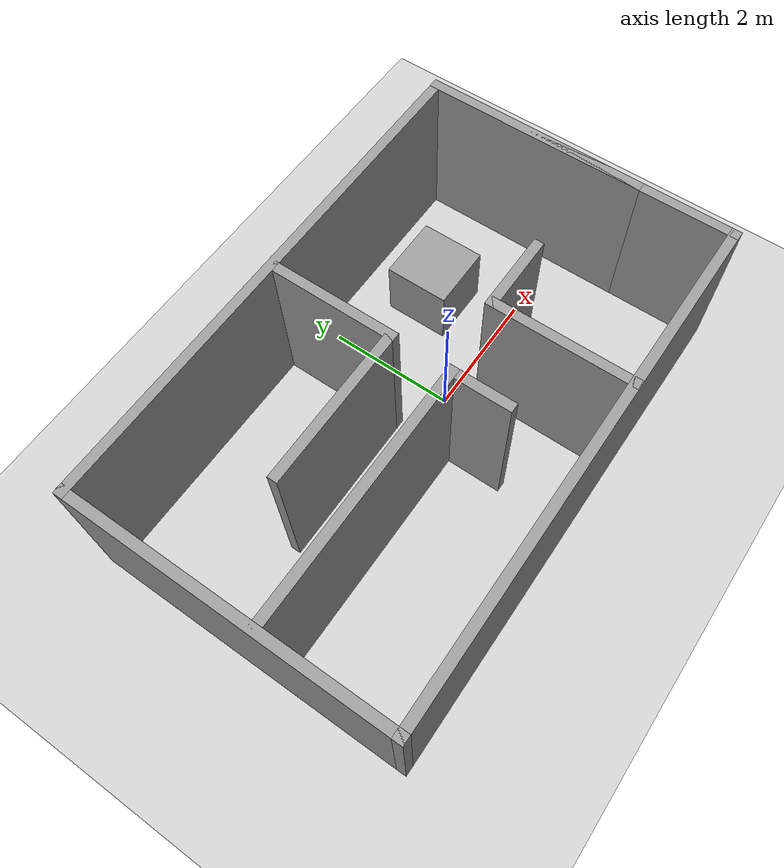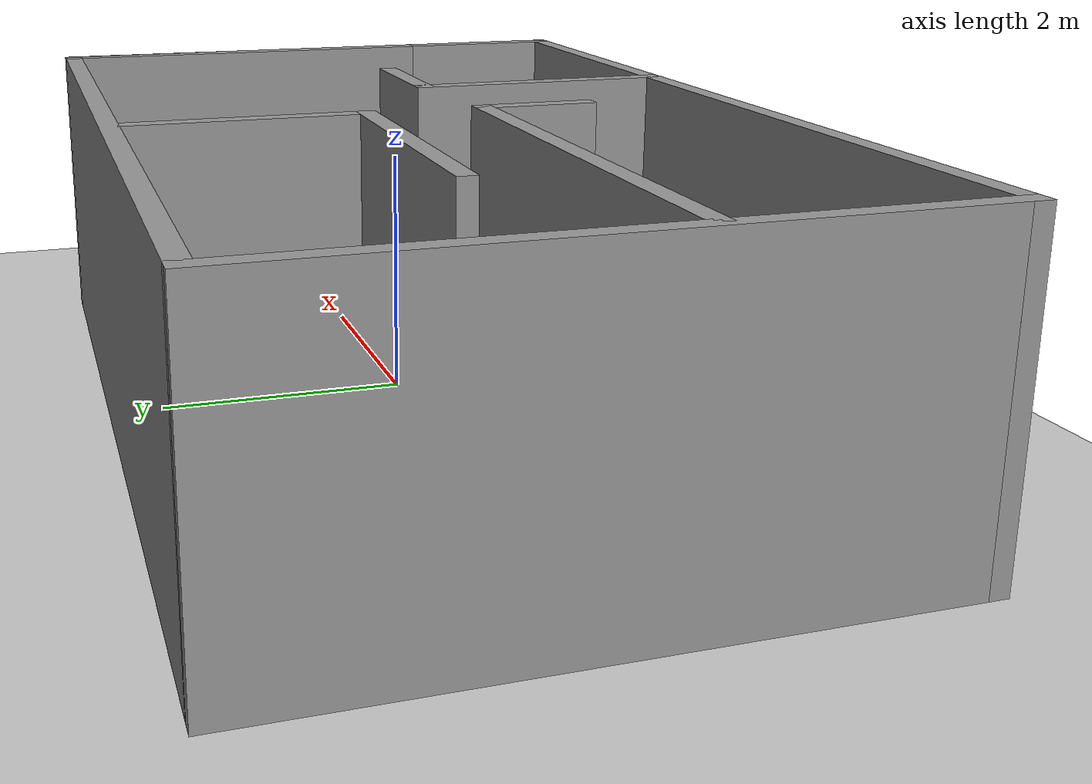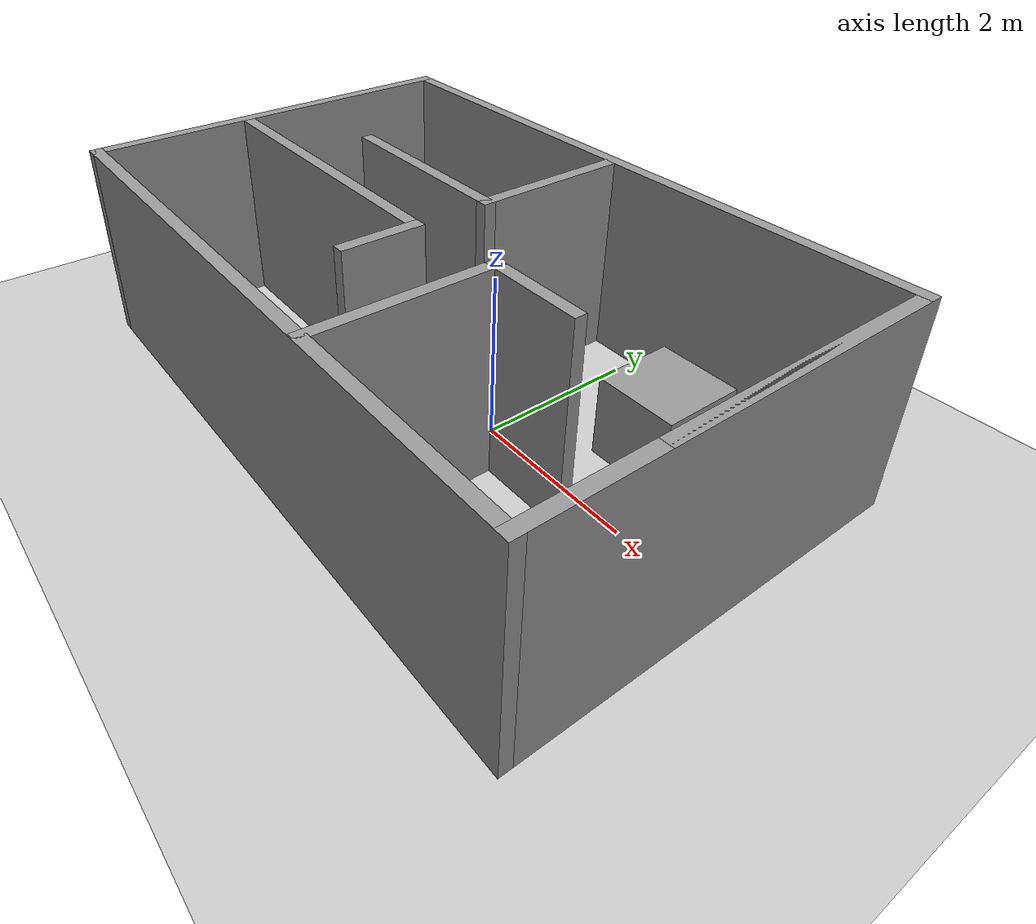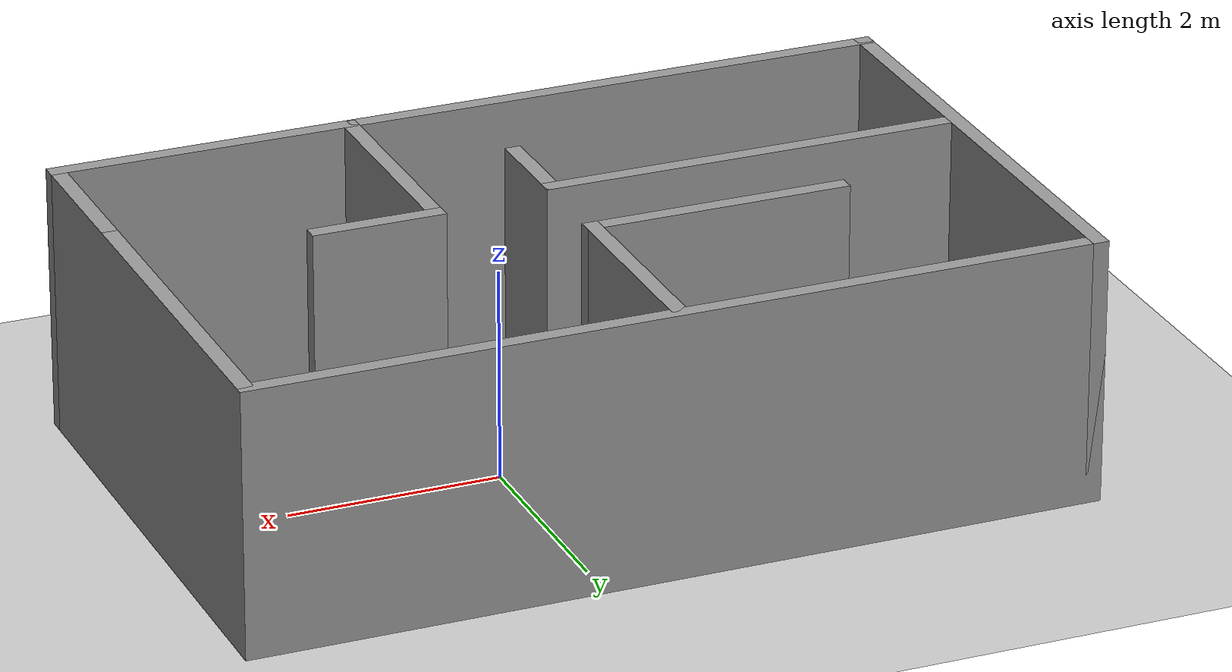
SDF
<sdf version="1.7">
 <world name="default">
  <model name="HnuRobot">
   <plugin name="my_robot_plugin" filename="libd_drive_car.so"><wheelSeparation>0.2</wheelSeparation></plugin>
   <link name="base_footprint">
    <inertial>
     <pose>0 0 0.084091 0 -0 0</pose>
     <mass>1.1</mass>
     <inertia>
      <ixx>0.00423533</ixx>
      <ixy>0</ixy>
      <ixz>0</ixz>
      <iyy>0.00487533</iyy>
      <iyz>0</iyz>
      <izz>0.00565024</izz>
     </inertia>
    </inertial>
    <collision name="base_footprint_fixed_joint_lump__base_link_collision">
     <pose>0 0 0.091 0 -0 0</pose>
     <geometry><cylinder><length>0.12</length><radius>0.1</radius></cylinder></geometry>
    </collision>
    <collision name="base_footprint_fixed_joint_lump__back_caster_link_collision_1">
     <pose>-0.08 0 0.015 0 -0 0</pose>
     <geometry><sphere><radius>0.016</radius></sphere></geometry>
     <surface>
      <contact><ode><kp>1e+09</kp><kd>1</kd></ode></contact>
      <friction><ode><mu>0</mu><mu2>0</mu2></ode></friction>
     </surface>
    </collision>
    <collision name="base_footprint_fixed_joint_lump__front_caster_link_collision_2">
     <pose>0.08 0 0.015 0 -0 0</pose>
     <geometry><sphere><radius>0.016</radius></sphere></geometry>
     <surface>
      <contact><ode><kp>1e+09</kp><kd>1</kd></ode></contact>
      <friction><ode><mu>0</mu><mu2>0</mu2></ode></friction>
     </surface>
    </collision>
    <visual name="base_footprint_fixed_joint_lump__base_link_visual">
     <pose>0 0 0.091 0 -0 0</pose>
     <geometry><cylinder><length>0.12</length><radius>0.1</radius></cylinder></geometry>
    </visual>
    <visual name="base_footprint_fixed_joint_lump__back_caster_link_visual_1">
     <pose>-0.08 0 0.015 0 -0 0</pose>
     <geometry><sphere><radius>0.016</radius></sphere></geometry>
    </visual>
    <visual name="base_footprint_fixed_joint_lump__front_caster_link_visual_2">
     <pose>0.08 0 0.015 0 -0 0</pose>
     <geometry><sphere><radius>0.016</radius></sphere></geometry>
    </visual>
   </link>
   <joint name="left_wheel_joint" type="revolute">
    <pose relative_to="base_footprint">0 0.1 0.031 0 -0 0</pose>
    <parent>base_footprint</parent>
    <child>left_wheel_link</child>
    <axis>
     <xyz>0 1 0</xyz>
     <limit><lower>-1e+16</lower><upper>1e+16</upper></limit>
     <dynamics><spring_reference>0</spring_reference><spring_stiffness>0</spring_stiffness></dynamics>
    </axis>
   </joint>
   <link name="left_wheel_link">
    <pose relative_to="left_wheel_joint">0 0 0 0 -0 0</pose>
    <inertial>
     <mass>0.05</mass>
     <inertia>
      <ixx>1.94667e-05</ixx>
      <ixy>0</ixy>
      <ixz>0</ixz>
      <iyy>1.94667e-05</iyy>
      <iyz>0</iyz>
      <izz>2.56e-05</izz>
     </inertia>
    </inertial>
    <collision name="left_wheel_link_collision">
     <pose>0 0 0 1.57079 -0 0</pose>
     <geometry><cylinder><length>0.04</length><radius>0.032</radius></cylinder></geometry>
     <surface>
      <contact><ode><kp>1e+09</kp><kd>1</kd></ode></contact>
      <friction><ode><mu>20</mu><mu2>20</mu2></ode></friction>
     </surface>
    </collision>
    <visual name="left_wheel_link_visual">
     <pose>0 0 0 1.57079 -0 0</pose>
     <geometry><cylinder><length>0.04</length><radius>0.032</radius></cylinder></geometry>
    </visual>
   </link>
   <joint name="right_wheel_joint" type="revolute">
    <pose relative_to="base_footprint">0 -0.1 0.031 0 -0 0</pose>
    <parent>base_footprint</parent>
    <child>right_wheel_link</child>
    <axis>
     <xyz>0 1 0</xyz>
     <limit><lower>-1e+16</lower><upper>1e+16</upper></limit>
     <dynamics><spring_reference>0</spring_reference><spring_stiffness>0</spring_stiffness></dynamics>
    </axis>
   </joint>
   <link name="right_wheel_link">
    <pose relative_to="right_wheel_joint">0 0 0 0 -0 0</pose>
    <inertial>
     <mass>0.05</mass>
     <inertia>
      <ixx>1.94667e-05</ixx>
      <ixy>0</ixy>
      <ixz>0</ixz>
      <iyy>1.94667e-05</iyy>
      <iyz>0</iyz>
      <izz>2.56e-05</izz>
     </inertia>
    </inertial>
    <collision name="right_wheel_link_collision">
     <pose>0 0 0 1.57079 -0 0</pose>
     <geometry><cylinder><length>0.04</length><radius>0.032</radius></cylinder></geometry>
     <surface>
      <contact><ode><kp>1e+09</kp><kd>1</kd></ode></contact>
      <friction><ode><mu>20</mu><mu2>20</mu2></ode></friction>
     </surface>
    </collision>
    <visual name="right_wheel_link_visual">
     <pose>0 0 0 1.57079 -0 0</pose>
     <geometry><cylinder><length>0.04</length><radius>0.032</radius></cylinder></geometry>
    </visual>
   </link>
   <plugin name="pose_publisher_plugin" filename="libpose_publisher.so"/>
   <plugin name="odom_publisher_plugin" filename="libodom_publisher_plugin.so"/>
  </model>
  <light name="sun" type="directional">
   <pose>0 0 10 0 -0 0</pose>
   <diffuse>0.8 0.8 0.8 1</diffuse>
   <specular>0.2 0.2 0.2 1</specular>
   <attenuation>
    <range>1000</range>
    <constant>0.9</constant>
    <linear>0.01</linear>
    <quadratic>0.001</quadratic>
   </attenuation>
   <direction>-0.5 0.1 -0.9</direction>
   <spot><inner_angle>0</inner_angle><outer_angle>0</outer_angle><falloff>0</falloff></spot>
  </light>
  <model name="ground_plane">
   <static>1</static>
   <link name="link">
    <collision name="collision">
     <geometry><plane><normal>0 0 1</normal><size>100 100</size></plane></geometry>
     <surface><friction><ode><mu>100</mu><mu2>50</mu2></ode></friction></surface>
    </collision>
    <visual name="visual">
     <cast_shadows>0</cast_shadows>
     <geometry><plane><normal>0 0 1</normal><size>100 100</size></plane></geometry>
     <material>
      <script><uri>file://media/materials/scripts/gazebo.material</uri><name>Gazebo/Grey</name></script>
     </material>
    </visual>
   </link>
  </model>
  <gravity>0 0 -9.8</gravity>
  <magnetic_field>6e-06 2.3e-05 -4.2e-05</magnetic_field>
  <atmosphere type="adiabatic"/>
  <physics type="ode">
   <max_step_size>0.001</max_step_size>
   <real_time_factor>1</real_time_factor>
   <real_time_update_rate>1000</real_time_update_rate>
  </physics>
  <scene><ambient>0.4 0.4 0.4 1</ambient><background>0.7 0.7 0.7 1</background><shadows>1</shadows></scene>
  <audio><device>default</device></audio>
  <spherical_coordinates>
   <surface_model>EARTH_WGS84</surface_model>
   <latitude_deg>0</latitude_deg>
   <longitude_deg>0</longitude_deg>
   <elevation>0</elevation>
   <heading_deg>0</heading_deg>
  </spherical_coordinates>
  <model name="room.world">
   <pose>-0.709576 0.326645 0 0 -0 0</pose>
   <link name="Wall_0">
    <collision name="Wall_0_Collision">
     <geometry><box><size>8 0.15 2.5</size></box></geometry>
     <pose>0 0 1.25 0 -0 0</pose>
    </collision>
    <visual name="Wall_0_Visual">
     <pose>0 0 1.25 0 -0 0</pose>
     <geometry><box><size>8 0.15 2.5</size></box></geometry>
     <material>
      <script><uri>file://media/materials/scripts/gazebo.material</uri><name>Gazebo/Grey</name></script>
      <ambient>1 1 1 1</ambient>
     </material>
     <meta><layer>0</layer></meta>
    </visual>
    <pose>0 2.0325 0 0 -0 0</pose>
   </link>
   <link name="Wall_1">
    <collision name="Wall_1_Collision">
     <geometry><box><size>3.5 0.15 2.5</size></box></geometry>
     <pose>0 0 1.25 0 -0 0</pose>
    </collision>
    <visual name="Wall_1_Visual">
     <pose>0 0 1.25 0 -0 0</pose>
     <geometry><box><size>3.5 0.15 2.5</size></box></geometry>
     <material>
      <script><uri>file://media/materials/scripts/gazebo.material</uri><name>Gazebo/Grey</name></script>
      <ambient>1 1 1 1</ambient>
     </material>
     <meta><layer>0</layer></meta>
    </visual>
    <pose>3.925 0.3575 0 0 -0 -1.5708</pose>
   </link>
   <link name="Wall_14">
    <collision name="Wall_14_Collision">
     <geometry><box><size>2 0.15 2.5</size></box></geometry>
     <pose>0 0 1.25 0 -0 0</pose>
    </collision>
    <visual name="Wall_14_Visual">
     <pose>0 0 1.25 0 -0 0</pose>
     <geometry><box><size>2 0.15 2.5</size></box></geometry>
     <material>
      <script><uri>file://media/materials/scripts/gazebo.material</uri><name>Gazebo/Grey</name></script>
      <ambient>1 1 1 1</ambient>
     </material>
     <meta><layer>0</layer></meta>
    </visual>
    <pose>-0.001041 1.01648 0 0 -0 -1.5708</pose>
   </link>
   <link name="Wall_15">
    <collision name="Wall_15_Collision">
     <geometry><box><size>2.5 0.15 2.5</size></box></geometry>
     <pose>0 0 1.25 0 -0 0</pose>
    </collision>
    <visual name="Wall_15_Visual">
     <pose>0 0 1.25 0 -0 0</pose>
     <geometry><box><size>2.5 0.15 2.5</size></box></geometry>
     <material>
      <script><uri>file://media/materials/scripts/gazebo.material</uri><name>Gazebo/Grey</name></script>
      <ambient>1 1 1 1</ambient>
     </material>
     <meta><layer>0</layer></meta>
    </visual>
    <pose>-1.17604 0.091484 0 0 -0 3.14159</pose>
   </link>
   <link name="Wall_17">
    <collision name="Wall_17_Collision">
     <geometry><box><size>4 0.15 2.5</size></box></geometry>
     <pose>0 0 1.25 0 -0 0</pose>
    </collision>
    <visual name="Wall_17_Visual">
     <pose>0 0 1.25 0 -0 0</pose>
     <geometry><box><size>4 0.15 2.5</size></box></geometry>
     <material>
      <script><uri>file://media/materials/scripts/gazebo.material</uri><name>Gazebo/Grey</name></script>
      <ambient>1 1 1 1</ambient>
     </material>
     <meta><layer>0</layer></meta>
    </visual>
    <pose>-1.92386 -0.841717 0 0 -0 0</pose>
   </link>
   <link name="Wall_18">
    <collision name="Wall_18_Collision">
     <geometry><box><size>1 0.15 2.5</size></box></geometry>
     <pose>0 0 1.25 0 -0 0</pose>
    </collision>
    <visual name="Wall_18_Visual">
     <pose>0 0 1.25 0 -0 0</pose>
     <geometry><box><size>1 0.15 2.5</size></box></geometry>
     <material>
      <script><uri>file://media/materials/scripts/gazebo.material</uri><name>Gazebo/Grey</name></script>
      <ambient>1 1 1 1</ambient>
     </material>
     <meta><layer>0</layer></meta>
    </visual>
    <pose>0.001145 -1.26672 0 0 -0 -1.5708</pose>
   </link>
   <link name="Wall_20">
    <collision name="Wall_20_Collision">
     <geometry><box><size>2.25 0.15 2.5</size></box></geometry>
     <pose>0 0 1.25 0 -0 0</pose>
    </collision>
    <visual name="Wall_20_Visual">
     <pose>0 0 1.25 0 -0 0</pose>
     <geometry><box><size>2.25 0.15 2.5</size></box></geometry>
     <material>
      <script><uri>file://media/materials/scripts/gazebo.material</uri><name>Gazebo/Grey</name></script>
      <ambient>1 1 1 1</ambient>
     </material>
     <meta><layer>0</layer></meta>
    </visual>
    <pose>1.15482 -1.75365 0 0 -0 1.5708</pose>
   </link>
   <link name="Wall_21">
    <collision name="Wall_21_Collision">
     <geometry><box><size>1.25 0.15 2.5</size></box></geometry>
     <pose>0 0 1.25 0 -0 0</pose>
    </collision>
    <visual name="Wall_21_Visual">
     <pose>0 0 1.25 0 -0 0</pose>
     <geometry><box><size>1.25 0.15 2.5</size></box></geometry>
     <material>
      <script><uri>file://media/materials/scripts/gazebo.material</uri><name>Gazebo/Grey</name></script>
      <ambient>1 1 1 1</ambient>
     </material>
     <meta><layer>0</layer></meta>
    </visual>
    <pose>1.70482 -0.703646 0 0 -0 0</pose>
   </link>
   <link name="Wall_3">
    <collision name="Wall_3_Collision">
     <geometry><box><size>5 0.15 2.5</size></box></geometry>
     <pose>0 0 1.25 0 -0 0</pose>
    </collision>
    <visual name="Wall_3_Visual">
     <pose>0 0 1.25 0 -0 0</pose>
     <geometry><box><size>5 0.15 2.5</size></box></geometry>
     <material>
      <script><uri>file://media/materials/scripts/gazebo.material</uri><name>Gazebo/Grey</name></script>
      <ambient>1 1 1 1</ambient>
     </material>
     <meta><layer>0</layer></meta>
    </visual>
    <pose>3.925 -0.3925 0 0 -0 -1.5708</pose>
   </link>
   <link name="Wall_4">
    <collision name="Wall_4_Collision">
     <geometry><box><size>8 0.15 2.5</size></box></geometry>
     <pose>0 0 1.25 0 -0 0</pose>
    </collision>
    <visual name="Wall_4_Visual">
     <pose>0 0 1.25 0 -0 0</pose>
     <geometry><box><size>8 0.15 2.5</size></box></geometry>
     <material>
      <script><uri>file://media/materials/scripts/gazebo.material</uri><name>Gazebo/Grey</name></script>
      <ambient>1 1 1 1</ambient>
     </material>
     <meta><layer>0</layer></meta>
    </visual>
    <pose>0 -2.8175 0 0 -0 3.14159</pose>
   </link>
   <link name="Wall_5">
    <collision name="Wall_5_Collision">
     <geometry><box><size>5 0.15 2.5</size></box></geometry>
     <pose>0 0 1.25 0 -0 0</pose>
    </collision>
    <visual name="Wall_5_Visual">
     <pose>0 0 1.25 0 -0 0</pose>
     <geometry><box><size>5 0.15 2.5</size></box></geometry>
     <material>
      <script><uri>file://media/materials/scripts/gazebo.material</uri><name>Gazebo/Grey</name></script>
      <ambient>1 1 1 1</ambient>
     </material>
     <meta><layer>0</layer></meta>
    </visual>
    <pose>-3.925 -0.3925 0 0 -0 1.5708</pose>
   </link>
   <static>1</static>
  </model>
  <model name="unit_box">
   <pose>1.44312 1.1805 0.5 0 -0 0</pose>
   <link name="link">
    <inertial>
     <mass>1</mass>
     <inertia>
      <ixx>0.166667</ixx>
      <ixy>0</ixy>
      <ixz>0</ixz>
      <iyy>0.166667</iyy>
      <iyz>0</iyz>
      <izz>0.166667</izz>
     </inertia>
    </inertial>
    <collision name="collision"><geometry><box><size>1 1 1</size></box></geometry></collision>
    <visual name="visual">
     <geometry><box><size>1 1 1</size></box></geometry>
     <material>
      <script><name>Gazebo/Grey</name><uri>file://media/materials/scripts/gazebo.material</uri></script>
     </material>
    </visual>
   </link>
  </model>
 </world>
</sdf>
